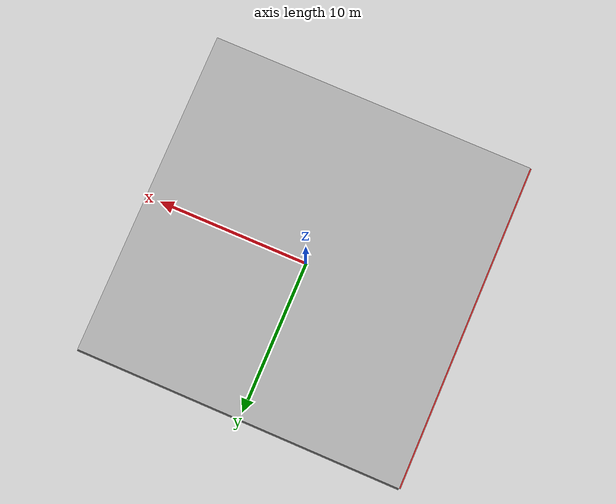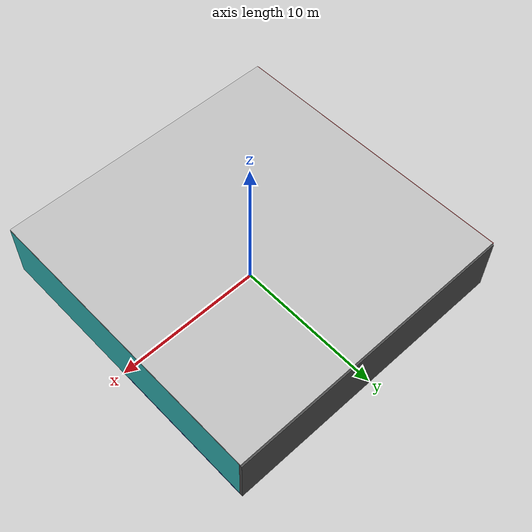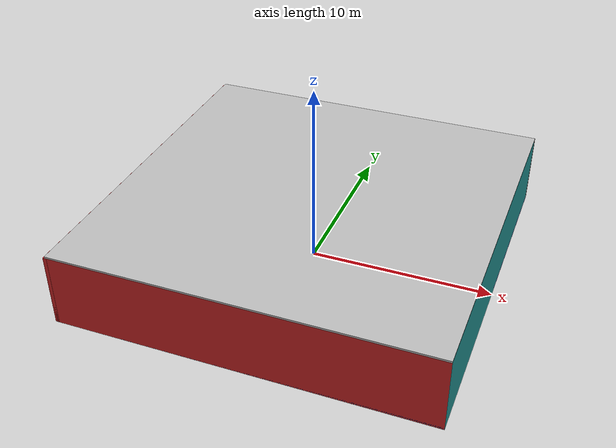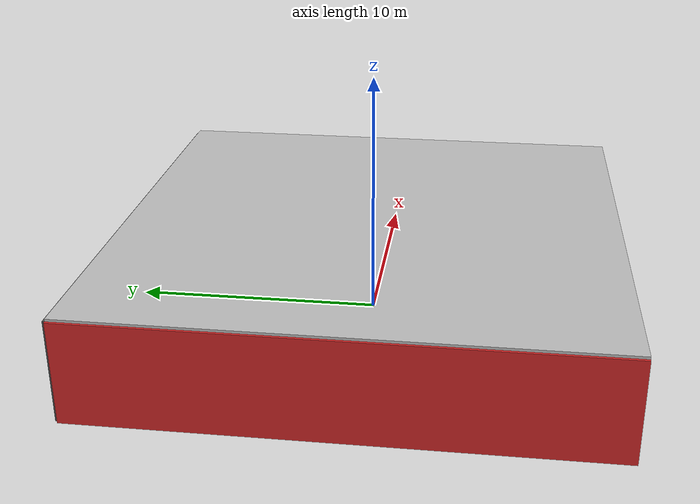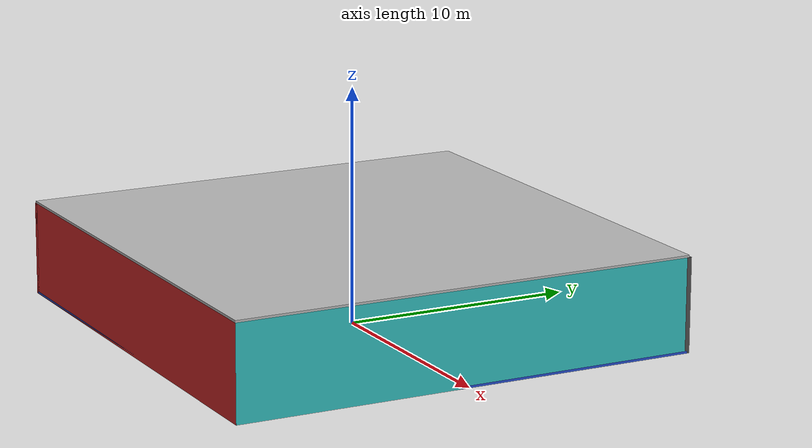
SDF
<sdf version="1.4">
 <world name="default">
  <physics type="ode">
   <max_step_size>0.001</max_step_size>
   <real_time_factor>1</real_time_factor>
   <real_time_update_rate>1000</real_time_update_rate>
   <gravity>0 0 -9.8</gravity>
  </physics>
  <scene><ambient>0.4 0.4 0.4 1</ambient><background>0.7 0.7 0.7 1</background><shadows>1</shadows></scene>
  <model name="Surrounding">
   <static>1</static>
   <link name="Ceiling">
    <collision name="Ceiling_Collision"><geometry><box><size>20 20 0.1</size></box></geometry></collision>
    <visual name="Ceiling_Visual">
     <geometry><box><size>20 20 0.1</size></box></geometry>
     <material>
      <script><uri>file://media/materials/scripts/gazebo.material</uri><name>Gazebo/LightOff</name></script>
     </material>
    </visual>
    <pose>0 0 4.05 0 0 0</pose>
   </link>
   <link name="Wall_South">
    <collision name="Wall_South_Collision">
     <geometry><box><size>20 0 4</size></box></geometry>
     <pose>0 0 2 0 -0 0</pose>
    </collision>
    <visual name="Wall_South_Visual">
     <pose>0 0 2 0 -0 0</pose>
     <geometry><box><size>20 0 4</size></box></geometry>
     <material>
      <script><uri>file://media/materials/scripts/gazebo.material</uri><name>Gazebo/RedBright</name></script>
     </material>
    </visual>
    <velocity_decay><linear>0</linear><angular>0</angular></velocity_decay>
    <pose>0 -10 0 0 -0 0</pose>
   </link>
   <link name="Wall_East">
    <collision name="Wall_21_Collision">
     <geometry><box><size>20 0 4</size></box></geometry>
     <pose>0 0 2 0 -0 0</pose>
    </collision>
    <visual name="Wall_21_Visual">
     <pose>0 0 2 0 -0 0</pose>
     <geometry><box><size>20 0 4</size></box></geometry>
     <material>
      <script>
       <uri>file://media/materials/scripts/gazebo.material</uri>
       <name>Gazebo/TurquoiseGlowOutline</name>
      </script>
     </material>
    </visual>
    <velocity_decay><linear>0</linear><angular>0</angular></velocity_decay>
    <pose>10 0 0 0 -0 1.5708</pose>
   </link>
   <link name="Wall_North">
    <collision name="Wall_22_Collision">
     <geometry><box><size>20 0.2 4</size></box></geometry>
     <pose>0 0 2 0 -0 0</pose>
    </collision>
    <visual name="Wall_22_Visual">
     <pose>0 0 2 0 -0 0</pose>
     <geometry><box><size>20 0.2 4</size></box></geometry>
     <material>
      <script><uri>file://media/materials/scripts/gazebo.material</uri><name>Gazebo/Road</name></script>
     </material>
    </visual>
    <velocity_decay><linear>0</linear><angular>0</angular></velocity_decay>
    <pose>0 10 0 0 -0 0</pose>
   </link>
   <link name="Wall_West">
    <collision name="Wall_23_Collision">
     <geometry><box><size>20 0.2 4</size></box></geometry>
     <pose>0 0 2 0 -0 0</pose>
    </collision>
    <visual name="Wall_23_Visual">
     <pose>0 0 2 0 -0 0</pose>
     <geometry><box><size>20 0.2 4</size></box></geometry>
     <material>
      <script><uri>file://media/materials/scripts/gazebo.material</uri><name>Gazebo/RedBright</name></script>
     </material>
    </visual>
    <velocity_decay><linear>0</linear><angular>0</angular></velocity_decay>
    <pose>-10 0 0 0 0 -1.5708</pose>
   </link>
   <link name="Ground_link">
    <collision name="collision">
     <pose>0 0 .05 0 -0 0</pose>
     <geometry><box><size>20 20 0.1</size></box></geometry>
    </collision>
    <visual name="visual">
     <pose>0 0 .05 0 -0 0</pose>
     <geometry><box><size>20 20 0.1</size></box></geometry>
     <material>
      <script><uri>file://media/materials/scripts/gazebo.material</uri><name>Gazebo/Blue</name></script>
     </material>
    </visual>
   </link>
   <static>1</static>
  </model>
  <spherical_coordinates>
   <surface_model>EARTH_WGS84</surface_model>
   <latitude_deg>0</latitude_deg>
   <longitude_deg>0</longitude_deg>
   <elevation>0</elevation>
   <heading_deg>0</heading_deg>
  </spherical_coordinates>
  <light name="lightball_0" type="diffuse">
   <diffuse>0.8 0.8 0.8 1</diffuse>
   <specular>0.2 0.2 0.2 1</specular>
   <attenuation>
    <range>100</range>
    <constant>0.7</constant>
    <linear>0.01</linear>
    <quadratic>0.001</quadratic>
   </attenuation>
   <direction>-0.5 0.1 -0.9</direction>
   <pose>5.7846102015 -7.88730396699 1.45251401794 0 0 0</pose>
  </light>
  <light name="lightball_1" type="diffuse">
   <diffuse>0.8 0.8 0.8 1</diffuse>
   <specular>0.2 0.2 0.2 1</specular>
   <attenuation>
    <range>100</range>
    <constant>0.7</constant>
    <linear>0.01</linear>
    <quadratic>0.001</quadratic>
   </attenuation>
   <direction>-0.5 0.1 -0.9</direction>
   <pose>-3.33210096312 3.19044540903 2.87865185618 0 0 0</pose>
  </light>
  <light name="lightball_2" type="diffuse">
   <diffuse>0.8 0.8 0.8 1</diffuse>
   <specular>0.2 0.2 0.2 1</specular>
   <attenuation>
    <range>100</range>
    <constant>0.7</constant>
    <linear>0.01</linear>
    <quadratic>0.001</quadratic>
   </attenuation>
   <direction>-0.5 0.1 -0.9</direction>
   <pose>-4.84318090965 -7.07712501945 0.818358139933 0 0 0</pose>
  </light>
  <light name="lightball_3" type="diffuse">
   <diffuse>0.8 0.8 0.8 1</diffuse>
   <specular>0.2 0.2 0.2 1</specular>
   <attenuation>
    <range>100</range>
    <constant>0.7</constant>
    <linear>0.01</linear>
    <quadratic>0.001</quadratic>
   </attenuation>
   <direction>-0.5 0.1 -0.9</direction>
   <pose>-7.36867264062 -7.17044664138 3.0812612269 0 0 0</pose>
  </light>
  <include><uri>model://table</uri><pose>-0.770632998025 -3.81655666701 0 0 0 1.26895120787</pose></include>
  <include>
   <uri>model://construction_cone</uri>
   <pose>1.4501002915 1.51176951082 0 0 0 2.94828780197</pose>
  </include>
  <include>
   <uri>model://robocup_3Dsim_goal</uri>
   <pose>4.76063132547 7.15835656211 0 0 0 0.881042864092</pose>
  </include>
  <include><uri>model://table</uri><pose>7.27137686769 -8.17157170393 0 0 0 0.00676192089378</pose></include>
 </world>
</sdf>

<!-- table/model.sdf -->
<sdf version="1.5">
  <model name="table">
    <static>true</static>
    <link name="link">
      <collision name="surface">
        <pose>0 0 1.0 0 0 0</pose>
        <geometry>
          <box>
            <size>1.5 0.8 0.03</size>
          </box>
        </geometry>
        <surface>
          <friction>
            <ode>
              <mu>0.6</mu>
              <mu2>0.6</mu2>
            </ode>
          </friction>
        </surface>
      </collision>
      <visual name="visual1">
        <pose>0 0 1.0 0 0 0</pose>
        <geometry>
          <box>
            <size>1.5 0.8 0.03</size>
          </box>
        </geometry>
        <material>
          <script>
            <uri>model://media/materials/scripts/gazebo.material</uri>
            <name>Gazebo/Wood</name>
          </script>
        </material>
      </visual>
      <collision name="front_left_leg">
        <pose>0.68 0.38 0.5 0 0 0</pose>
        <geometry>
          <cylinder>
            <radius>0.02</radius>
            <length>1.0</length>
          </cylinder>
        </geometry>
      </collision>
      <visual name="front_left_leg">
        <pose>0.68 0.38 0.5 0 0 0</pose>
        <geometry>
          <cylinder>
            <radius>0.02</radius>
            <length>1.0</length>
          </cylinder>
        </geometry>
        <material>
          <script>
            <uri>model://media/materials/scripts/gazebo.material</uri>
            <name>Gazebo/Grey</name>
          </script>
        </material>
      </visual>
      <collision name="front_right_leg">
        <pose>0.68 -0.38 0.5 0 0 0</pose>
        <geometry>
          <cylinder>
            <radius>0.02</radius>
            <length>1.0</length>
          </cylinder>
        </geometry>
      </collision>
      <visual name="front_right_leg">
        <pose>0.68 -0.38 0.5 0 0 0</pose>
        <geometry>
          <cylinder>
            <radius>0.02</radius>
            <length>1.0</length>
          </cylinder>
        </geometry>
        <material>
          <script>
            <uri>model://media/materials/scripts/gazebo.material</uri>
            <name>Gazebo/Grey</name>
          </script>
        </material>
      </visual>
      <collision name="back_right_leg">
        <pose>-0.68 -0.38 0.5 0 0 0</pose>
        <geometry>
          <cylinder>
            <radius>0.02</radius>
            <length>1.0</length>
          </cylinder>
        </geometry>
      </collision>
      <visual name="back_right_leg">
        <pose>-0.68 -0.38 0.5 0 0 0</pose>
        <geometry>
          <cylinder>
            <radius>0.02</radius>
            <length>1.0</length>
          </cylinder>
        </geometry>
        <material>
          <script>
            <uri>model://media/materials/scripts/gazebo.material</uri>
            <name>Gazebo/Grey</name>
          </script>
        </material>
      </visual>
      <collision name="back_left_leg">
        <pose>-0.68 0.38 0.5 0 0 0</pose>
        <geometry>
          <cylinder>
            <radius>0.02</radius>
            <length>1.0</length>
          </cylinder>
        </geometry>
      </collision>
      <visual name="back_left_leg">
        <pose>-0.68 0.38 0.5 0 0 0</pose>
        <geometry>
          <cylinder>
            <radius>0.02</radius>
            <length>1.0</length>
          </cylinder>
        </geometry>
        <material>
          <script>
            <uri>model://media/materials/scripts/gazebo.material</uri>
            <name>Gazebo/Grey</name>
          </script>
        </material>
      </visual>
    </link>
  </model>
</sdf>

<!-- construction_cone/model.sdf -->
<sdf version="1.5">
  <model name="Construction Cone">
    <link name="link">
      <collision name="collision">
        <geometry>
          <mesh>
            <scale>10 10 10</scale>
            <uri>file://isr-testbed/construction_cone/meshes/construction_cone.dae</uri>
          </mesh>
        </geometry>
      </collision>
      <visual name="visual">
        <geometry>
          <mesh>
            <scale>10 10 10</scale>
            <uri>file://isr-testbed/construction_cone/meshes/construction_cone.dae</uri>
          </mesh>
        </geometry>
      </visual>
    </link>
  </model>
</sdf>

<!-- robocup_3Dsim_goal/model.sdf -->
<sdf version="1.5">
  <model name="robocup_3d_goal">
    <static>true</static>
    <link name="left_post">
      <pose>0 1.05 0.45 0 0 0</pose>
      <collision name="collision">
        <geometry>
          <cylinder>
            <radius>0.05</radius>
            <length>0.9</length>
          </cylinder>
        </geometry>
      </collision>
      <visual name="visual">
        <geometry>
          <cylinder>
            <radius>0.05</radius>
            <length>0.9</length>
          </cylinder>
        </geometry>
        <material>
          <script>
            <uri>file://media/materials/scripts/gazebo.material</uri>
            <name>Gazebo/ZincYellow</name>
          </script>
        </material>
      </visual>
    </link>
    <link name="left_support_horiz_lower">
      <pose>0.30 1.05 0.01 0 0 0</pose>
      <collision name="collision">
        <geometry>
          <box>
            <size>0.50 0.02 0.02</size>
          </box>
        </geometry>
      </collision>
      <visual name="visual">
        <geometry>
          <box>
            <size>0.50 0.02 0.02</size>
          </box>
        </geometry>
        <material>
          <script>
            <uri>file://media/materials/scripts/gazebo.material</uri>
            <name>Gazebo/White</name>
          </script>
        </material>
      </visual>
    </link>
    <link name="left_support_horiz_upper">
      <pose>0.30 1.05 0.79 0 0 0</pose>
      <collision name="collision">
        <geometry>
          <box>
            <size>0.50 0.02 0.02</size>
          </box>
        </geometry>
      </collision>
      <visual name="visual">
        <geometry>
          <box>
            <size>0.50 0.02 0.02</size>
          </box>
        </geometry>
        <material>
          <script>
            <uri>file://media/materials/scripts/gazebo.material</uri>
            <name>Gazebo/White</name>
          </script>
        </material>
      </visual>
    </link>
    <link name="left_support_vertical">
      <pose>0.56 1.05 0.4 0 1.5708 0</pose>
      <collision name="collision">
        <geometry>
          <box>
            <size>0.80 0.02 0.02</size>
          </box>
        </geometry>
      </collision>
      <visual name="visual">
        <geometry>
          <box>
            <size>0.80 0.02 0.02</size>
          </box>
        </geometry>
        <material>
          <script>
            <uri>file://media/materials/scripts/gazebo.material</uri>
            <name>Gazebo/White</name>
          </script>
        </material>
      </visual>
    </link>
    <link name="right_support_horiz_lower">
      <pose>0.30 -1.05 0.01 0 0 0</pose>
      <collision name="collision">
        <geometry>
          <box>
            <size>0.50 0.02 0.02</size>
          </box>
        </geometry>
      </collision>
      <visual name="visual">
        <geometry>
          <box>
            <size>0.50 0.02 0.02</size>
          </box>
        </geometry>
        <material>
          <script>
            <uri>file://media/materials/scripts/gazebo.material</uri>
            <name>Gazebo/White</name>
          </script>
        </material>
      </visual>
    </link>
    <link name="right_support_horiz_upper">
      <pose>0.30 -1.05 0.79 0 0 0</pose>
      <collision name="collision">
        <geometry>
          <box>
            <size>0.50 0.02 0.02</size>
          </box>
        </geometry>
      </collision>
      <visual name="visual">
        <geometry>
          <box>
            <size>0.50 0.02 0.02</size>
          </box>
        </geometry>
        <material>
          <script>
            <uri>file://media/materials/scripts/gazebo.material</uri>
            <name>Gazebo/White</name>
          </script>
        </material>
      </visual>
    </link>
    <link name="right_support_vertical">
      <pose>0.56 -1.05 0.4 0 1.5708 0</pose>
      <collision name="collision">
        <geometry>
          <box>
            <size>0.80 0.02 0.02</size>
          </box>
        </geometry>
      </collision>
      <visual name="visual">
        <geometry>
          <box>
            <size>0.80 0.02 0.02</size>
          </box>
        </geometry>
        <material>
          <script>
            <uri>file://media/materials/scripts/gazebo.material</uri>
            <name>Gazebo/White</name>
          </script>
        </material>
      </visual>
    </link>
    <link name="center_support_horiz_lower">
      <pose>0.56 0 0.01 0 1.5708 0</pose>
      <collision name="collision">
        <geometry>
          <box>
            <size>0.02 2.08 0.02</size>
          </box>
        </geometry>
      </collision>
      <visual name="visual">
        <geometry>
          <box>
            <size>0.02 2.08 0.02</size>
          </box>
        </geometry>
        <material>
          <script>
            <uri>file://media/materials/scripts/gazebo.material</uri>
            <name>Gazebo/White</name>
          </script>
        </material>
      </visual>
    </link>
    <link name="center_support_horiz_upper">
      <pose>0.56 0 0.79 0 1.5708 0</pose>
      <collision name="collision">
        <geometry>
          <box>
            <size>0.02 2.08 0.02</size>
          </box>
        </geometry>
      </collision>
      <visual name="visual">
        <geometry>
          <box>
            <size>0.02 2.08 0.02</size>
          </box>
        </geometry>
        <material>
          <script>
            <uri>file://media/materials/scripts/gazebo.material</uri>
            <name>Gazebo/White</name>
          </script>
        </material>
      </visual>
    </link>
    <link name="right_post">
      <pose>0 -1.05 0.45 0 0 0</pose>
      <collision name="collision">
        <geometry>
          <cylinder>
            <radius>0.05</radius>
            <length>0.9</length>
          </cylinder>
        </geometry>
      </collision>
      <visual name="visual">
        <geometry>
          <cylinder>
            <radius>0.05</radius>
            <length>0.9</length>
          </cylinder>
        </geometry>
        <material>
          <script>
            <uri>file://media/materials/scripts/gazebo.material</uri>
            <name>Gazebo/ZincYellow</name>
          </script>
        </material>
      </visual>
    </link>
    <link name="crossbar">
      <pose>0 0 0.85 1.57 1.57 0</pose>
      <collision name="collision">
        <geometry>
          <cylinder>
            <radius>0.05</radius>
            <length>2.0</length>
          </cylinder>
        </geometry>
      </collision>
      <visual name="visual">
        <geometry>
          <cylinder>
            <radius>0.05</radius>
            <length>2.0</length>
          </cylinder>
        </geometry>
        <material>
          <script>
            <uri>file://media/materials/scripts/gazebo.material</uri>
            <name>Gazebo/ZincYellow</name>
          </script>
        </material>
      </visual>
    </link>
    <link name="center_net">
      <pose>0.56 0 0.40 0 0 0</pose>
      <collision name="collision">
        <geometry>
          <box>
            <size>0.01 2.1 0.80</size>
          </box>
        </geometry>
      </collision>
      <visual name="visual">
        <geometry>
          <box>
            <size>0.01 2.1 0.80</size>
          </box>
        </geometry>
        <material>
          <script>
            <uri>model://../model_source/models/robocup09_spl_field/materials/scripts/</uri>
            <uri>model://../model_source/models/robocup09_spl_field/materials/textures/</uri>
            <name>RoboCup/Net</name>
          </script>
        </material>
      </visual>
    </link>
    <link name="left_net">
      <pose>0.30 1.05 0.40 0 0 0</pose>
      <collision name="collision">
        <geometry>
          <box>
            <size>0.50 0.01 0.76</size>
          </box>
        </geometry>
      </collision>
      <visual name="visual">
        <geometry>
          <box>
            <size>0.50 0.01 0.76</size>
          </box>
        </geometry>
        <material>
          <script>
            <uri>model://../model_source/models/robocup09_spl_field/materials/scripts/</uri>
            <uri>model://../model_source/models/robocup09_spl_field/materials/textures/</uri>
            <name>RoboCup/Net</name>
          </script>
        </material>
      </visual>
    </link>
    <link name="right_net">
      <pose>0.30 -1.05 0.40 0 0 0</pose>
      <collision name="collision">
        <geometry>
          <box>
            <size>0.50 0.01 0.76</size>
          </box>
        </geometry>
      </collision>
      <visual name="visual">
        <geometry>
          <box>
            <size>0.50 0.01 0.76</size>
          </box>
        </geometry>
        <material>
          <script>
            <uri>model://../model_source/models/robocup09_spl_field/materials/scripts/</uri>
            <uri>model://../model_source/models/robocup09_spl_field/materials/textures/</uri>
            <name>RoboCup/Net</name>
          </script>
        </material>
      </visual>
    </link>
  </model>
</sdf>
